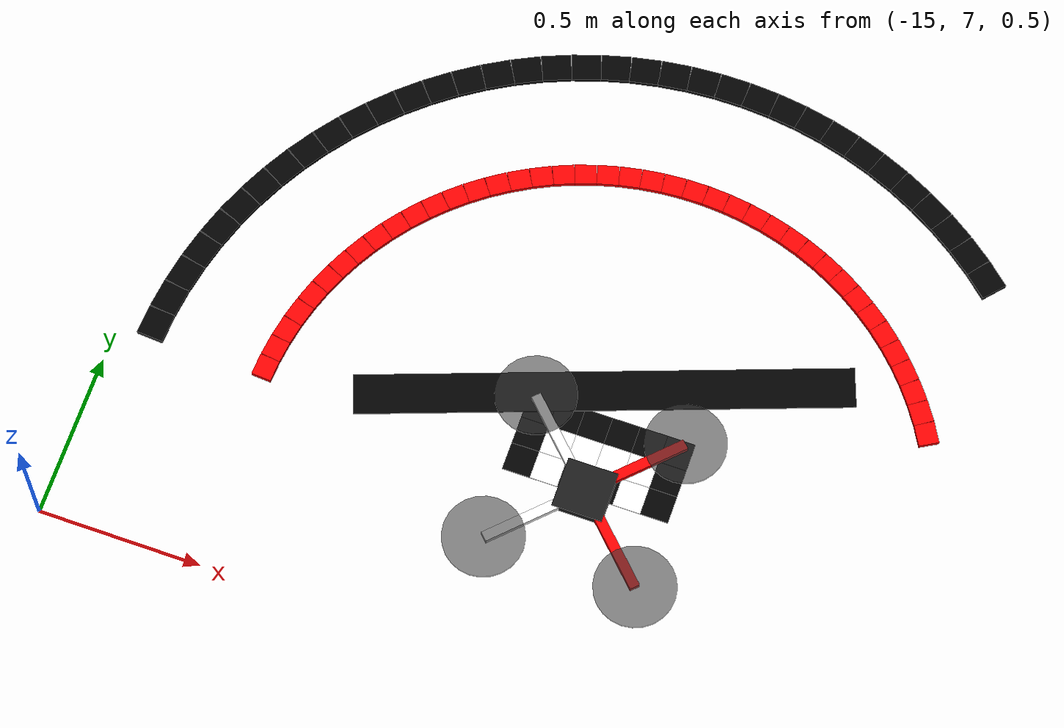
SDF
<sdf version="1.9">
 <world name="indoor_mission">
  <model name="start_vertiport_black_outer_ring_13">
   <static>true</static>
   <pose>-12.609883149614907 8.51498374009662 0.701 0 0 2.421644337142132</pose>
   <link name="link">
    <visual name="visual">
     <geometry><box><size>0.08835729338221293 0.08 0.015</size></box></geometry>
     <material><ambient>0 0 0 1</ambient><diffuse>0 0 0 1</diffuse></material>
    </visual>
   </link>
  </model>
  <model name="start_vertiport_black_outer_ring_14">
   <static>true</static>
   <pose>-12.678172070838228 8.571027009393168 0.701 0 0 2.4870941840919194</pose>
   <link name="link">
    <visual name="visual">
     <geometry><box><size>0.08835729338221293 0.08 0.015</size></box></geometry>
     <material><ambient>0 0 0 1</ambient><diffuse>0 0 0 1</diffuse></material>
    </visual>
   </link>
  </model>
  <model name="start_vertiport_black_outer_ring_15">
   <static>true</static>
   <pose>-12.749980185423537 8.622483976608436 0.701 0 0 2.5525440310417067</pose>
   <link name="link">
    <visual name="visual">
     <geometry><box><size>0.08835729338221293 0.08 0.015</size></box></geometry>
     <material><ambient>0 0 0 1</ambient><diffuse>0 0 0 1</diffuse></material>
    </visual>
   </link>
  </model>
  <model name="start_vertiport_black_outer_ring_16">
   <static>true</static>
   <pose>-12.825 8.669134295108993 0.701 0 0 2.617993877991494</pose>
   <link name="link">
    <visual name="visual">
     <geometry><box><size>0.08835729338221293 0.08 0.015</size></box></geometry>
     <material><ambient>0 0 0 1</ambient><diffuse>0 0 0 1</diffuse></material>
    </visual>
   </link>
  </model>
  <model name="start_vertiport_black_outer_ring_17">
   <static>true</static>
   <pose>-12.902910268204348 8.710778201069129 0.701 0 0 2.6834437249412817</pose>
   <link name="link">
    <visual name="visual">
     <geometry><box><size>0.08835729338221293 0.08 0.015</size></box></geometry>
     <material><ambient>0 0 0 1</ambient><diffuse>0 0 0 1</diffuse></material>
    </visual>
   </link>
  </model>
  <model name="start_vertiport_black_outer_ring_18">
   <static>true</static>
   <pose>-12.98337736630713 8.747237368890238 0.701 0 0 2.748893571891069</pose>
   <link name="link">
    <visual name="visual">
     <geometry><box><size>0.08835729338221293 0.08 0.015</size></box></geometry>
     <material><ambient>0 0 0 1</ambient><diffuse>0 0 0 1</diffuse></material>
    </visual>
   </link>
  </model>
  <model name="start_vertiport_black_outer_ring_19">
   <static>true</static>
   <pose>-13.06605672184073 8.778355674818393 0.701 0 0 2.8143434188408563</pose>
   <link name="link">
    <visual name="visual">
     <geometry><box><size>0.08835729338221293 0.08 0.015</size></box></geometry>
     <material><ambient>0 0 0 1</ambient><diffuse>0 0 0 1</diffuse></material>
    </visual>
   </link>
  </model>
  <model name="start_vertiport_black_outer_ring_20">
   <static>true</static>
   <pose>-13.150594289111597 8.803999865490242 0.701 0 0 2.8797932657906435</pose>
   <link name="link">
    <visual name="visual">
     <geometry><box><size>0.08835729338221293 0.08 0.015</size></box></geometry>
     <material><ambient>0 0 0 1</ambient><diffuse>0 0 0 1</diffuse></material>
    </visual>
   </link>
  </model>
  <model name="start_vertiport_black_outer_ring_21">
   <static>true</static>
   <pose>-13.236628065278227 8.82406012854436 0.701 0 0 2.945243112740431</pose>
   <link name="link">
    <visual name="visual">
     <geometry><box><size>0.08835729338221293 0.08 0.015</size></box></geometry>
     <material><ambient>0 0 0 1</ambient><diffuse>0 0 0 1</diffuse></material>
    </visual>
   </link>
  </model>
  <model name="start_vertiport_black_outer_ring_22">
   <static>true</static>
   <pose>-13.32378964050293 8.838450562854645 0.701 0 0 3.0106929596902186</pose>
   <link name="link">
    <visual name="visual">
     <geometry><box><size>0.08835729338221293 0.08 0.015</size></box></geometry>
     <material><ambient>0 0 0 1</ambient><diffuse>0 0 0 1</diffuse></material>
    </visual>
   </link>
  </model>
  <model name="start_vertiport_black_outer_ring_23">
   <static>true</static>
   <pose>-13.411705775539307 8.847109546372115 0.701 0 0 3.0761428066400054</pose>
   <link name="link">
    <visual name="visual">
     <geometry><box><size>0.08835729338221293 0.08 0.015</size></box></geometry>
     <material><ambient>0 0 0 1</ambient><diffuse>0 0 0 1</diffuse></material>
    </visual>
   </link>
  </model>
  <model name="start_vertiport_black_outer_ring_24">
   <static>true</static>
   <pose>-13.5 8.85 0.701 0 0 3.141592653589793</pose>
   <link name="link">
    <visual name="visual">
     <geometry><box><size>0.08835729338221293 0.08 0.015</size></box></geometry>
     <material><ambient>0 0 0 1</ambient><diffuse>0 0 0 1</diffuse></material>
    </visual>
   </link>
  </model>
  <model name="start_vertiport_black_outer_ring_25">
   <static>true</static>
   <pose>-13.588294224460693 8.847109546372115 0.701 0 0 3.2070425005395804</pose>
   <link name="link">
    <visual name="visual">
     <geometry><box><size>0.08835729338221293 0.08 0.015</size></box></geometry>
     <material><ambient>0 0 0 1</ambient><diffuse>0 0 0 1</diffuse></material>
    </visual>
   </link>
  </model>
  <model name="start_vertiport_black_outer_ring_26">
   <static>true</static>
   <pose>-13.67621035949707 8.838450562854645 0.701 0 0 3.2724923474893677</pose>
   <link name="link">
    <visual name="visual">
     <geometry><box><size>0.08835729338221293 0.08 0.015</size></box></geometry>
     <material><ambient>0 0 0 1</ambient><diffuse>0 0 0 1</diffuse></material>
    </visual>
   </link>
  </model>
  <model name="start_vertiport_black_outer_ring_27">
   <static>true</static>
   <pose>-13.763371934721773 8.824060128544362 0.701 0 0 3.337942194439155</pose>
   <link name="link">
    <visual name="visual">
     <geometry><box><size>0.08835729338221293 0.08 0.015</size></box></geometry>
     <material><ambient>0 0 0 1</ambient><diffuse>0 0 0 1</diffuse></material>
    </visual>
   </link>
  </model>
  <model name="start_vertiport_black_outer_ring_28">
   <static>true</static>
   <pose>-13.849405710888403 8.803999865490242 0.701 0 0 3.4033920413889422</pose>
   <link name="link">
    <visual name="visual">
     <geometry><box><size>0.08835729338221293 0.08 0.015</size></box></geometry>
     <material><ambient>0 0 0 1</ambient><diffuse>0 0 0 1</diffuse></material>
    </visual>
   </link>
  </model>
  <model name="start_vertiport_black_outer_ring_29">
   <static>true</static>
   <pose>-13.933943278159267 8.778355674818393 0.701 0 0 3.46884188833873</pose>
   <link name="link">
    <visual name="visual">
     <geometry><box><size>0.08835729338221293 0.08 0.015</size></box></geometry>
     <material><ambient>0 0 0 1</ambient><diffuse>0 0 0 1</diffuse></material>
    </visual>
   </link>
  </model>
  <model name="start_vertiport_black_outer_ring_30">
   <static>true</static>
   <pose>-14.01662263369287 8.747237368890238 0.701 0 0 3.534291735288517</pose>
   <link name="link">
    <visual name="visual">
     <geometry><box><size>0.08835729338221293 0.08 0.015</size></box></geometry>
     <material><ambient>0 0 0 1</ambient><diffuse>0 0 0 1</diffuse></material>
    </visual>
   </link>
  </model>
  <model name="start_vertiport_black_outer_ring_31">
   <static>true</static>
   <pose>-14.097089731795652 8.710778201069129 0.701 0 0 3.5997415822383045</pose>
   <link name="link">
    <visual name="visual">
     <geometry><box><size>0.08835729338221293 0.08 0.015</size></box></geometry>
     <material><ambient>0 0 0 1</ambient><diffuse>0 0 0 1</diffuse></material>
    </visual>
   </link>
  </model>
  <model name="start_vertiport_black_outer_ring_32">
   <static>true</static>
   <pose>-14.174999999999999 8.669134295108993 0.701 0 0 3.665191429188092</pose>
   <link name="link">
    <visual name="visual">
     <geometry><box><size>0.08835729338221293 0.08 0.015</size></box></geometry>
     <material><ambient>0 0 0 1</ambient><diffuse>0 0 0 1</diffuse></material>
    </visual>
   </link>
  </model>
  <model name="start_vertiport_black_outer_ring_33">
   <static>true</static>
   <pose>-14.250019814576463 8.622483976608436 0.701 0 0 3.730641276137879</pose>
   <link name="link">
    <visual name="visual">
     <geometry><box><size>0.08835729338221293 0.08 0.015</size></box></geometry>
     <material><ambient>0 0 0 1</ambient><diffuse>0 0 0 1</diffuse></material>
    </visual>
   </link>
  </model>
  <model name="start_vertiport_black_outer_ring_34">
   <static>true</static>
   <pose>-14.321827929161772 8.571027009393168 0.701 0 0 3.7960911230876664</pose>
   <link name="link">
    <visual name="visual">
     <geometry><box><size>0.08835729338221293 0.08 0.015</size></box></geometry>
     <material><ambient>0 0 0 1</ambient><diffuse>0 0 0 1</diffuse></material>
    </visual>
   </link>
  </model>
  <model name="start_vertiport_black_outer_ring_35">
   <static>true</static>
   <pose>-14.390116850385093 8.51498374009662 0.701 0 0 3.8615409700374537</pose>
   <link name="link">
    <visual name="visual">
     <geometry><box><size>0.08835729338221293 0.08 0.015</size></box></geometry>
     <material><ambient>0 0 0 1</ambient><diffuse>0 0 0 1</diffuse></material>
    </visual>
   </link>
  </model>
  <model name="start_vertiport_black_outer_ring_36">
   <static>true</static>
   <pose>-14.454594154601839 8.454594154601839 0.701 0 0 3.9269908169872414</pose>
   <link name="link">
    <visual name="visual">
     <geometry><box><size>0.08835729338221293 0.08 0.015</size></box></geometry>
     <material><ambient>0 0 0 1</ambient><diffuse>0 0 0 1</diffuse></material>
    </visual>
   </link>
  </model>
  <model name="start_vertiport_black_outer_ring_37">
   <static>true</static>
   <pose>-14.51498374009662 8.390116850385093 0.701 0 0 3.9924406639370287</pose>
   <link name="link">
    <visual name="visual">
     <geometry><box><size>0.08835729338221293 0.08 0.015</size></box></geometry>
     <material><ambient>0 0 0 1</ambient><diffuse>0 0 0 1</diffuse></material>
    </visual>
   </link>
  </model>
  <model name="start_vertiport_black_outer_ring_38">
   <static>true</static>
   <pose>-14.571027009393168 8.321827929161774 0.701 0 0 4.057890510886816</pose>
   <link name="link">
    <visual name="visual">
     <geometry><box><size>0.08835729338221293 0.08 0.015</size></box></geometry>
     <material><ambient>0 0 0 1</ambient><diffuse>0 0 0 1</diffuse></material>
    </visual>
   </link>
  </model>
  <model name="start_vertiport_black_outer_ring_39">
   <static>true</static>
   <pose>-14.622483976608436 8.250019814576463 0.701 0 0 4.123340357836604</pose>
   <link name="link">
    <visual name="visual">
     <geometry><box><size>0.08835729338221293 0.08 0.015</size></box></geometry>
     <material><ambient>0 0 0 1</ambient><diffuse>0 0 0 1</diffuse></material>
    </visual>
   </link>
  </model>
  <model name="start_vertiport_black_outer_ring_40">
   <static>true</static>
   <pose>-14.669134295108993 8.175 0.701 0 0 4.1887902047863905</pose>
   <link name="link">
    <visual name="visual">
     <geometry><box><size>0.08835729338221293 0.08 0.015</size></box></geometry>
     <material><ambient>0 0 0 1</ambient><diffuse>0 0 0 1</diffuse></material>
    </visual>
   </link>
  </model>
  <model name="start_vertiport_black_outer_ring_41">
   <static>true</static>
   <pose>-14.710778201069129 8.097089731795652 0.701 0 0 4.254240051736177</pose>
   <link name="link">
    <visual name="visual">
     <geometry><box><size>0.08835729338221293 0.08 0.015</size></box></geometry>
     <material><ambient>0 0 0 1</ambient><diffuse>0 0 0 1</diffuse></material>
    </visual>
   </link>
  </model>
  <model name="start_vertiport_black_outer_ring_42">
   <static>true</static>
   <pose>-14.747237368890238 8.016622633692872 0.701 0 0 4.319689898685965</pose>
   <link name="link">
    <visual name="visual">
     <geometry><box><size>0.08835729338221293 0.08 0.015</size></box></geometry>
     <material><ambient>0 0 0 1</ambient><diffuse>0 0 0 1</diffuse></material>
    </visual>
   </link>
  </model>
  <model name="start_vertiport_black_outer_ring_43">
   <static>true</static>
   <pose>-14.778355674818393 7.933943278159268 0.701 0 0 4.385139745635753</pose>
   <link name="link">
    <visual name="visual">
     <geometry><box><size>0.08835729338221293 0.08 0.015</size></box></geometry>
     <material><ambient>0 0 0 1</ambient><diffuse>0 0 0 1</diffuse></material>
    </visual>
   </link>
  </model>
  <model name="start_vertiport_black_outer_ring_44">
   <static>true</static>
   <pose>-14.803999865490242 7.849405710888403 0.701 0 0 4.4505895925855405</pose>
   <link name="link">
    <visual name="visual">
     <geometry><box><size>0.08835729338221293 0.08 0.015</size></box></geometry>
     <material><ambient>0 0 0 1</ambient><diffuse>0 0 0 1</diffuse></material>
    </visual>
   </link>
  </model>
  <model name="start_vertiport_black_outer_ring_45">
   <static>true</static>
   <pose>-14.82406012854436 7.763371934721774 0.701 0 0 4.516039439535327</pose>
   <link name="link">
    <visual name="visual">
     <geometry><box><size>0.08835729338221293 0.08 0.015</size></box></geometry>
     <material><ambient>0 0 0 1</ambient><diffuse>0 0 0 1</diffuse></material>
    </visual>
   </link>
  </model>
  <model name="start_vertiport_black_outer_ring_46">
   <static>true</static>
   <pose>-14.838450562854645 7.6762103594970705 0.701 0 0 4.581489286485114</pose>
   <link name="link">
    <visual name="visual">
     <geometry><box><size>0.08835729338221293 0.08 0.015</size></box></geometry>
     <material><ambient>0 0 0 1</ambient><diffuse>0 0 0 1</diffuse></material>
    </visual>
   </link>
  </model>
  <model name="start_vertiport_black_outer_ring_47">
   <static>true</static>
   <pose>-14.847109546372115 7.588294224460694 0.701 0 0 4.646939133434902</pose>
   <link name="link">
    <visual name="visual">
     <geometry><box><size>0.08835729338221293 0.08 0.015</size></box></geometry>
     <material><ambient>0 0 0 1</ambient><diffuse>0 0 0 1</diffuse></material>
    </visual>
   </link>
  </model>
  <model name="start_vertiport_red_safety_ring_8">
   <static>true</static>
   <pose>-12.63397459621556 8.0 0.703 0 0 2.0943951023931953</pose>
   <link name="link">
    <visual name="visual">
     <geometry><box><size>0.06544984694978735 0.06 0.015</size></box></geometry>
     <material><ambient>1 0 0 1</ambient><diffuse>1 0 0 1</diffuse></material>
    </visual>
   </link>
  </model>
  <model name="start_vertiport_red_safety_ring_9">
   <static>true</static>
   <pose>-12.668530387697455 8.055570233019601 0.703 0 0 2.1598449493429825</pose>
   <link name="link">
    <visual name="visual">
     <geometry><box><size>0.06544984694978735 0.06 0.015</size></box></geometry>
     <material><ambient>1 0 0 1</ambient><diffuse>1 0 0 1</diffuse></material>
    </visual>
   </link>
  </model>
  <model name="start_vertiport_red_safety_ring_10">
   <static>true</static>
   <pose>-12.706646659708765 8.108761429008721 0.703 0 0 2.2252947962927703</pose>
   <link name="link">
    <visual name="visual">
     <geometry><box><size>0.06544984694978735 0.06 0.015</size></box></geometry>
     <material><ambient>1 0 0 1</ambient><diffuse>1 0 0 1</diffuse></material>
    </visual>
   </link>
  </model>
  <model name="start_vertiport_red_safety_ring_11">
   <static>true</static>
   <pose>-12.748160192521024 8.15934581510007 0.703 0 0 2.2907446432425576</pose>
   <link name="link">
    <visual name="visual">
     <geometry><box><size>0.06544984694978735 0.06 0.015</size></box></geometry>
     <material><ambient>1 0 0 1</ambient><diffuse>1 0 0 1</diffuse></material>
    </visual>
   </link>
  </model>
  <model name="start_vertiport_red_safety_ring_12">
   <static>true</static>
   <pose>-12.792893218813452 8.207106781186548 0.703 0 0 2.356194490192345</pose>
   <link name="link">
    <visual name="visual">
     <geometry><box><size>0.06544984694978735 0.06 0.015</size></box></geometry>
     <material><ambient>1 0 0 1</ambient><diffuse>1 0 0 1</diffuse></material>
    </visual>
   </link>
  </model>
  <model name="start_vertiport_red_safety_ring_13">
   <static>true</static>
   <pose>-12.84065418489993 8.251839807478976 0.703 0 0 2.421644337142132</pose>
   <link name="link">
    <visual name="visual">
     <geometry><box><size>0.06544984694978735 0.06 0.015</size></box></geometry>
     <material><ambient>1 0 0 1</ambient><diffuse>1 0 0 1</diffuse></material>
    </visual>
   </link>
  </model>
  <model name="start_vertiport_red_safety_ring_14">
   <static>true</static>
   <pose>-12.891238570991279 8.293353340291235 0.703 0 0 2.4870941840919194</pose>
   <link name="link">
    <visual name="visual">
     <geometry><box><size>0.06544984694978735 0.06 0.015</size></box></geometry>
     <material><ambient>1 0 0 1</ambient><diffuse>1 0 0 1</diffuse></material>
    </visual>
   </link>
  </model>
  <model name="start_vertiport_red_safety_ring_15">
   <static>true</static>
   <pose>-12.944429766980397 8.331469612302545 0.703 0 0 2.5525440310417067</pose>
   <link name="link">
    <visual name="visual">
     <geometry><box><size>0.06544984694978735 0.06 0.015</size></box></geometry>
     <material><ambient>1 0 0 1</ambient><diffuse>1 0 0 1</diffuse></material>
    </visual>
   </link>
  </model>
  <model name="start_vertiport_red_safety_ring_16">
   <static>true</static>
   <pose>-13.0 8.36602540378444 0.703 0 0 2.617993877991494</pose>
   <link name="link">
    <visual name="visual">
     <geometry><box><size>0.06544984694978735 0.06 0.015</size></box></geometry>
     <material><ambient>1 0 0 1</ambient><diffuse>1 0 0 1</diffuse></material>
    </visual>
   </link>
  </model>
  <model name="start_vertiport_red_safety_ring_17">
   <static>true</static>
   <pose>-13.057711309780998 8.396872741532688 0.703 0 0 2.6834437249412817</pose>
   <link name="link">
    <visual name="visual">
     <geometry><box><size>0.06544984694978735 0.06 0.015</size></box></geometry>
     <material><ambient>1 0 0 1</ambient><diffuse>1 0 0 1</diffuse></material>
    </visual>
   </link>
  </model>
  <model name="start_vertiport_red_safety_ring_18">
   <static>true</static>
   <pose>-13.11731656763491 8.423879532511286 0.703 0 0 2.748893571891069</pose>
   <link name="link">
    <visual name="visual">
     <geometry><box><size>0.06544984694978735 0.06 0.015</size></box></geometry>
     <material><ambient>1 0 0 1</ambient><diffuse>1 0 0 1</diffuse></material>
    </visual>
   </link>
  </model>
  <model name="start_vertiport_red_safety_ring_19">
   <static>true</static>
   <pose>-13.178560534696839 8.446930129495106 0.703 0 0 2.8143434188408563</pose>
   <link name="link">
    <visual name="visual">
     <geometry><box><size>0.06544984694978735 0.06 0.015</size></box></geometry>
     <material><ambient>1 0 0 1</ambient><diffuse>1 0 0 1</diffuse></material>
    </visual>
   </link>
  </model>
  <model name="start_vertiport_red_safety_ring_20">
   <static>true</static>
   <pose>-13.241180954897478 8.465925826289068 0.703 0 0 2.8797932657906435</pose>
   <link name="link">
    <visual name="visual">
     <geometry><box><size>0.06544984694978735 0.06 0.015</size></box></geometry>
     <material><ambient>1 0 0 1</ambient><diffuse>1 0 0 1</diffuse></material>
    </visual>
   </link>
  </model>
  <model name="start_vertiport_red_safety_ring_21">
   <static>true</static>
   <pose>-13.304909677983872 8.48078528040323 0.703 0 0 2.945243112740431</pose>
   <link name="link">
    <visual name="visual">
     <geometry><box><size>0.06544984694978735 0.06 0.015</size></box></geometry>
     <material><ambient>1 0 0 1</ambient><diffuse>1 0 0 1</diffuse></material>
    </visual>
   </link>
  </model>
  <model name="start_vertiport_red_safety_ring_22">
   <static>true</static>
   <pose>-13.369473807779949 8.491444861373811 0.703 0 0 3.0106929596902186</pose>
   <link name="link">
    <visual name="visual">
     <geometry><box><size>0.06544984694978735 0.06 0.015</size></box></geometry>
     <material><ambient>1 0 0 1</ambient><diffuse>1 0 0 1</diffuse></material>
    </visual>
   </link>
  </model>
  <model name="start_vertiport_red_safety_ring_23">
   <static>true</static>
   <pose>-13.434596870769857 8.497858923238603 0.703 0 0 3.0761428066400054</pose>
   <link name="link">
    <visual name="visual">
     <geometry><box><size>0.06544984694978735 0.06 0.015</size></box></geometry>
     <material><ambient>1 0 0 1</ambient><diffuse>1 0 0 1</diffuse></material>
    </visual>
   </link>
  </model>
  <model name="start_vertiport_red_safety_ring_24">
   <static>true</static>
   <pose>-13.5 8.5 0.703 0 0 3.141592653589793</pose>
   <link name="link">
    <visual name="visual">
     <geometry><box><size>0.06544984694978735 0.06 0.015</size></box></geometry>
     <material><ambient>1 0 0 1</ambient><diffuse>1 0 0 1</diffuse></material>
    </visual>
   </link>
  </model>
  <model name="start_vertiport_red_safety_ring_25">
   <static>true</static>
   <pose>-13.565403129230143 8.497858923238603 0.703 0 0 3.2070425005395804</pose>
   <link name="link">
    <visual name="visual">
     <geometry><box><size>0.06544984694978735 0.06 0.015</size></box></geometry>
     <material><ambient>1 0 0 1</ambient><diffuse>1 0 0 1</diffuse></material>
    </visual>
   </link>
  </model>
  <model name="start_vertiport_red_safety_ring_26">
   <static>true</static>
   <pose>-13.630526192220051 8.491444861373811 0.703 0 0 3.2724923474893677</pose>
   <link name="link">
    <visual name="visual">
     <geometry><box><size>0.06544984694978735 0.06 0.015</size></box></geometry>
     <material><ambient>1 0 0 1</ambient><diffuse>1 0 0 1</diffuse></material>
    </visual>
   </link>
  </model>
  <model name="start_vertiport_red_safety_ring_27">
   <static>true</static>
   <pose>-13.695090322016128 8.48078528040323 0.703 0 0 3.337942194439155</pose>
   <link name="link">
    <visual name="visual">
     <geometry><box><size>0.06544984694978735 0.06 0.015</size></box></geometry>
     <material><ambient>1 0 0 1</ambient><diffuse>1 0 0 1</diffuse></material>
    </visual>
   </link>
  </model>
  <model name="start_vertiport_red_safety_ring_28">
   <static>true</static>
   <pose>-13.75881904510252 8.465925826289068 0.703 0 0 3.4033920413889422</pose>
   <link name="link">
    <visual name="visual">
     <geometry><box><size>0.06544984694978735 0.06 0.015</size></box></geometry>
     <material><ambient>1 0 0 1</ambient><diffuse>1 0 0 1</diffuse></material>
    </visual>
   </link>
  </model>
  <model name="start_vertiport_red_safety_ring_29">
   <static>true</static>
   <pose>-13.821439465303161 8.446930129495106 0.703 0 0 3.46884188833873</pose>
   <link name="link">
    <visual name="visual">
     <geometry><box><size>0.06544984694978735 0.06 0.015</size></box></geometry>
     <material><ambient>1 0 0 1</ambient><diffuse>1 0 0 1</diffuse></material>
    </visual>
   </link>
  </model>
  <model name="start_vertiport_red_safety_ring_30">
   <static>true</static>
   <pose>-13.88268343236509 8.423879532511286 0.703 0 0 3.534291735288517</pose>
   <link name="link">
    <visual name="visual">
     <geometry><box><size>0.06544984694978735 0.06 0.015</size></box></geometry>
     <material><ambient>1 0 0 1</ambient><diffuse>1 0 0 1</diffuse></material>
    </visual>
   </link>
  </model>
  <model name="start_vertiport_red_safety_ring_31">
   <static>true</static>
   <pose>-13.942288690219002 8.396872741532688 0.703 0 0 3.5997415822383045</pose>
   <link name="link">
    <visual name="visual">
     <geometry><box><size>0.06544984694978735 0.06 0.015</size></box></geometry>
     <material><ambient>1 0 0 1</ambient><diffuse>1 0 0 1</diffuse></material>
    </visual>
   </link>
  </model>
  <model name="start_vertiport_red_safety_ring_32">
   <static>true</static>
   <pose>-14.0 8.36602540378444 0.703 0 0 3.665191429188092</pose>
   <link name="link">
    <visual name="visual">
     <geometry><box><size>0.06544984694978735 0.06 0.015</size></box></geometry>
     <material><ambient>1 0 0 1</ambient><diffuse>1 0 0 1</diffuse></material>
    </visual>
   </link>
  </model>
  <model name="start_vertiport_red_safety_ring_33">
   <static>true</static>
   <pose>-14.055570233019601 8.331469612302545 0.703 0 0 3.730641276137879</pose>
   <link name="link">
    <visual name="visual">
     <geometry><box><size>0.06544984694978735 0.06 0.015</size></box></geometry>
     <material><ambient>1 0 0 1</ambient><diffuse>1 0 0 1</diffuse></material>
    </visual>
   </link>
  </model>
  <model name="start_vertiport_red_safety_ring_34">
   <static>true</static>
   <pose>-14.10876142900872 8.293353340291235 0.703 0 0 3.7960911230876664</pose>
   <link name="link">
    <visual name="visual">
     <geometry><box><size>0.06544984694978735 0.06 0.015</size></box></geometry>
     <material><ambient>1 0 0 1</ambient><diffuse>1 0 0 1</diffuse></material>
    </visual>
   </link>
  </model>
  <model name="start_vertiport_red_safety_ring_35">
   <static>true</static>
   <pose>-14.15934581510007 8.251839807478978 0.703 0 0 3.8615409700374537</pose>
   <link name="link">
    <visual name="visual">
     <geometry><box><size>0.06544984694978735 0.06 0.015</size></box></geometry>
     <material><ambient>1 0 0 1</ambient><diffuse>1 0 0 1</diffuse></material>
    </visual>
   </link>
  </model>
  <model name="start_vertiport_red_safety_ring_36">
   <static>true</static>
   <pose>-14.207106781186548 8.207106781186548 0.703 0 0 3.9269908169872414</pose>
   <link name="link">
    <visual name="visual">
     <geometry><box><size>0.06544984694978735 0.06 0.015</size></box></geometry>
     <material><ambient>1 0 0 1</ambient><diffuse>1 0 0 1</diffuse></material>
    </visual>
   </link>
  </model>
  <model name="start_vertiport_red_safety_ring_37">
   <static>true</static>
   <pose>-14.251839807478976 8.15934581510007 0.703 0 0 3.9924406639370287</pose>
   <link name="link">
    <visual name="visual">
     <geometry><box><size>0.06544984694978735 0.06 0.015</size></box></geometry>
     <material><ambient>1 0 0 1</ambient><diffuse>1 0 0 1</diffuse></material>
    </visual>
   </link>
  </model>
  <model name="start_vertiport_red_safety_ring_38">
   <static>true</static>
   <pose>-14.293353340291235 8.108761429008721 0.703 0 0 4.057890510886816</pose>
   <link name="link">
    <visual name="visual">
     <geometry><box><size>0.06544984694978735 0.06 0.015</size></box></geometry>
     <material><ambient>1 0 0 1</ambient><diffuse>1 0 0 1</diffuse></material>
    </visual>
   </link>
  </model>
  <model name="start_vertiport_red_safety_ring_39">
   <static>true</static>
   <pose>-14.331469612302545 8.055570233019603 0.703 0 0 4.123340357836604</pose>
   <link name="link">
    <visual name="visual">
     <geometry><box><size>0.06544984694978735 0.06 0.015</size></box></geometry>
     <material><ambient>1 0 0 1</ambient><diffuse>1 0 0 1</diffuse></material>
    </visual>
   </link>
  </model>
  <model name="start_vertiport_red_safety_ring_40">
   <static>true</static>
   <pose>-14.36602540378444 8.0 0.703 0 0 4.1887902047863905</pose>
   <link name="link">
    <visual name="visual">
     <geometry><box><size>0.06544984694978735 0.06 0.015</size></box></geometry>
     <material><ambient>1 0 0 1</ambient><diffuse>1 0 0 1</diffuse></material>
    </visual>
   </link>
  </model>
  <model name="start_vertiport_red_safety_ring_41">
   <static>true</static>
   <pose>-14.396872741532688 7.9422886902190015 0.703 0 0 4.254240051736177</pose>
   <link name="link">
    <visual name="visual">
     <geometry><box><size>0.06544984694978735 0.06 0.015</size></box></geometry>
     <material><ambient>1 0 0 1</ambient><diffuse>1 0 0 1</diffuse></material>
    </visual>
   </link>
  </model>
  <model name="start_vertiport_red_safety_ring_42">
   <static>true</static>
   <pose>-14.423879532511286 7.88268343236509 0.703 0 0 4.319689898685965</pose>
   <link name="link">
    <visual name="visual">
     <geometry><box><size>0.06544984694978735 0.06 0.015</size></box></geometry>
     <material><ambient>1 0 0 1</ambient><diffuse>1 0 0 1</diffuse></material>
    </visual>
   </link>
  </model>
  <model name="start_vertiport_red_safety_ring_43">
   <static>true</static>
   <pose>-14.446930129495106 7.821439465303162 0.703 0 0 4.385139745635753</pose>
   <link name="link">
    <visual name="visual">
     <geometry><box><size>0.06544984694978735 0.06 0.015</size></box></geometry>
     <material><ambient>1 0 0 1</ambient><diffuse>1 0 0 1</diffuse></material>
    </visual>
   </link>
  </model>
  <model name="start_vertiport_red_safety_ring_44">
   <static>true</static>
   <pose>-14.465925826289068 7.758819045102521 0.703 0 0 4.4505895925855405</pose>
   <link name="link">
    <visual name="visual">
     <geometry><box><size>0.06544984694978735 0.06 0.015</size></box></geometry>
     <material><ambient>1 0 0 1</ambient><diffuse>1 0 0 1</diffuse></material>
    </visual>
   </link>
  </model>
  <model name="start_vertiport_red_safety_ring_45">
   <static>true</static>
   <pose>-14.48078528040323 7.695090322016129 0.703 0 0 4.516039439535327</pose>
   <link name="link">
    <visual name="visual">
     <geometry><box><size>0.06544984694978735 0.06 0.015</size></box></geometry>
     <material><ambient>1 0 0 1</ambient><diffuse>1 0 0 1</diffuse></material>
    </visual>
   </link>
  </model>
  <model name="start_vertiport_red_safety_ring_46">
   <static>true</static>
   <pose>-14.491444861373811 7.630526192220052 0.703 0 0 4.581489286485114</pose>
   <link name="link">
    <visual name="visual">
     <geometry><box><size>0.06544984694978735 0.06 0.015</size></box></geometry>
     <material><ambient>1 0 0 1</ambient><diffuse>1 0 0 1</diffuse></material>
    </visual>
   </link>
  </model>
  <model name="start_vertiport_red_safety_ring_47">
   <static>true</static>
   <pose>-14.497858923238603 7.565403129230144 0.703 0 0 4.646939133434902</pose>
   <link name="link">
    <visual name="visual">
     <geometry><box><size>0.06544984694978735 0.06 0.015</size></box></geometry>
     <material><ambient>1 0 0 1</ambient><diffuse>1 0 0 1</diffuse></material>
    </visual>
   </link>
  </model>
  <model name="start_vertiport_v_right">
   <static>true</static>
   <pose>-13.55 7.82 0.706 0 0 1.9208</pose>
   <link name="link">
    <visual name="visual">
     <geometry><box><size>0.12 1.45 0.005</size></box></geometry>
     <material><ambient>0 0 0 1</ambient><diffuse>0 0 0 1</diffuse></material>
    </visual>
   </link>
  </model>
  <model name="start_vertiport_marker_cell_0_0">
   <static>true</static>
   <pose>-13.708333333333334 7.708333333333333 0.704 0 0 0</pose>
   <link name="link">
    <visual name="visual">
     <geometry><box><size>0.08333333333333333 0.08333333333333333 0.003</size></box></geometry>
     <material><ambient>0 0 0 1</ambient><diffuse>0 0 0 1</diffuse></material>
    </visual>
   </link>
  </model>
  <model name="start_vertiport_marker_cell_0_1">
   <static>true</static>
   <pose>-13.625 7.708333333333333 0.704 0 0 0</pose>
   <link name="link">
    <visual name="visual">
     <geometry><box><size>0.08333333333333333 0.08333333333333333 0.003</size></box></geometry>
     <material><ambient>0 0 0 1</ambient><diffuse>0 0 0 1</diffuse></material>
    </visual>
   </link>
  </model>
  <model name="start_vertiport_marker_cell_0_2">
   <static>true</static>
   <pose>-13.541666666666668 7.708333333333333 0.704 0 0 0</pose>
   <link name="link">
    <visual name="visual">
     <geometry><box><size>0.08333333333333333 0.08333333333333333 0.003</size></box></geometry>
     <material><ambient>0 0 0 1</ambient><diffuse>0 0 0 1</diffuse></material>
    </visual>
   </link>
  </model>
  <model name="start_vertiport_marker_cell_0_3">
   <static>true</static>
   <pose>-13.458333333333334 7.708333333333333 0.704 0 0 0</pose>
   <link name="link">
    <visual name="visual">
     <geometry><box><size>0.08333333333333333 0.08333333333333333 0.003</size></box></geometry>
     <material><ambient>0 0 0 1</ambient><diffuse>0 0 0 1</diffuse></material>
    </visual>
   </link>
  </model>
  <model name="start_vertiport_marker_cell_0_4">
   <static>true</static>
   <pose>-13.375 7.708333333333333 0.704 0 0 0</pose>
   <link name="link">
    <visual name="visual">
     <geometry><box><size>0.08333333333333333 0.08333333333333333 0.003</size></box></geometry>
     <material><ambient>0 0 0 1</ambient><diffuse>0 0 0 1</diffuse></material>
    </visual>
   </link>
  </model>
  <model name="start_vertiport_marker_cell_0_5">
   <static>true</static>
   <pose>-13.291666666666668 7.708333333333333 0.704 0 0 0</pose>
   <link name="link">
    <visual name="visual">
     <geometry><box><size>0.08333333333333333 0.08333333333333333 0.003</size></box></geometry>
     <material><ambient>0 0 0 1</ambient><diffuse>0 0 0 1</diffuse></material>
    </visual>
   </link>
  </model>
  <model name="start_vertiport_marker_cell_1_0">
   <static>true</static>
   <pose>-13.708333333333334 7.625 0.704 0 0 0</pose>
   <link name="link">
    <visual name="visual">
     <geometry><box><size>0.08333333333333333 0.08333333333333333 0.003</size></box></geometry>
     <material><ambient>0 0 0 1</ambient><diffuse>0 0 0 1</diffuse></material>
    </visual>
   </link>
  </model>
  <model name="start_vertiport_marker_cell_1_1">
   <static>true</static>
   <pose>-13.625 7.625 0.704 0 0 0</pose>
   <link name="link">
    <visual name="visual">
     <geometry><box><size>0.08333333333333333 0.08333333333333333 0.003</size></box></geometry>
     <material><ambient>1 1 1 1</ambient><diffuse>1 1 1 1</diffuse></material>
    </visual>
   </link>
  </model>
  <model name="start_vertiport_marker_cell_1_2">
   <static>true</static>
   <pose>-13.541666666666668 7.625 0.704 0 0 0</pose>
   <link name="link">
    <visual name="visual">
     <geometry><box><size>0.08333333333333333 0.08333333333333333 0.003</size></box></geometry>
     <material><ambient>1 1 1 1</ambient><diffuse>1 1 1 1</diffuse></material>
    </visual>
   </link>
  </model>
  <model name="start_vertiport_marker_cell_1_3">
   <static>true</static>
   <pose>-13.458333333333334 7.625 0.704 0 0 0</pose>
   <link name="link">
    <visual name="visual">
     <geometry><box><size>0.08333333333333333 0.08333333333333333 0.003</size></box></geometry>
     <material><ambient>1 1 1 1</ambient><diffuse>1 1 1 1</diffuse></material>
    </visual>
   </link>
  </model>
  <model name="start_vertiport_marker_cell_1_4">
   <static>true</static>
   <pose>-13.375 7.625 0.704 0 0 0</pose>
   <link name="link">
    <visual name="visual">
     <geometry><box><size>0.08333333333333333 0.08333333333333333 0.003</size></box></geometry>
     <material><ambient>1 1 1 1</ambient><diffuse>1 1 1 1</diffuse></material>
    </visual>
   </link>
  </model>
  <model name="start_vertiport_marker_cell_1_5">
   <static>true</static>
   <pose>-13.291666666666668 7.625 0.704 0 0 0</pose>
   <link name="link">
    <visual name="visual">
     <geometry><box><size>0.08333333333333333 0.08333333333333333 0.003</size></box></geometry>
     <material><ambient>0 0 0 1</ambient><diffuse>0 0 0 1</diffuse></material>
    </visual>
   </link>
  </model>
  <model name="start_vertiport_marker_cell_2_0">
   <static>true</static>
   <pose>-13.708333333333334 7.541666666666666 0.704 0 0 0</pose>
   <link name="link">
    <visual name="visual">
     <geometry><box><size>0.08333333333333333 0.08333333333333333 0.003</size></box></geometry>
     <material><ambient>0 0 0 1</ambient><diffuse>0 0 0 1</diffuse></material>
    </visual>
   </link>
  </model>
  <model name="start_vertiport_marker_cell_2_1">
   <static>true</static>
   <pose>-13.625 7.541666666666666 0.704 0 0 0</pose>
   <link name="link">
    <visual name="visual">
     <geometry><box><size>0.08333333333333333 0.08333333333333333 0.003</size></box></geometry>
     <material><ambient>1 1 1 1</ambient><diffuse>1 1 1 1</diffuse></material>
    </visual>
   </link>
  </model>
  <model name="start_vertiport_marker_cell_2_2">
   <static>true</static>
   <pose>-13.541666666666668 7.541666666666666 0.704 0 0 0</pose>
   <link name="link">
    <visual name="visual">
     <geometry><box><size>0.08333333333333333 0.08333333333333333 0.003</size></box></geometry>
     <material><ambient>0 0 0 1</ambient><diffuse>0 0 0 1</diffuse></material>
    </visual>
   </link>
  </model>
  <model name="start_vertiport_marker_cell_2_3">
   <static>true</static>
   <pose>-13.458333333333334 7.541666666666666 0.704 0 0 0</pose>
   <link name="link">
    <visual name="visual">
     <geometry><box><size>0.08333333333333333 0.08333333333333333 0.003</size></box></geometry>
     <material><ambient>0 0 0 1</ambient><diffuse>0 0 0 1</diffuse></material>
    </visual>
   </link>
  </model>
  <model name="start_vertiport_marker_cell_2_4">
   <static>true</static>
   <pose>-13.375 7.541666666666666 0.704 0 0 0</pose>
   <link name="link">
    <visual name="visual">
     <geometry><box><size>0.08333333333333333 0.08333333333333333 0.003</size></box></geometry>
     <material><ambient>1 1 1 1</ambient><diffuse>1 1 1 1</diffuse></material>
    </visual>
   </link>
  </model>
  <model name="start_vertiport_marker_cell_2_5">
   <static>true</static>
   <pose>-13.291666666666668 7.541666666666666 0.704 0 0 0</pose>
   <link name="link">
    <visual name="visual">
     <geometry><box><size>0.08333333333333333 0.08333333333333333 0.003</size></box></geometry>
     <material><ambient>0 0 0 1</ambient><diffuse>0 0 0 1</diffuse></material>
    </visual>
   </link>
  </model>
  <model name="sim_drone">
   <static>true</static>
   <pose>-13.5 7.5 0.73 0 0 0</pose>
   <link name="link">
    <visual name="f450_center_hub">
     <pose>0 0 0.015 0 0 0</pose>
     <geometry><box><size>0.15 0.15 0.03</size></box></geometry>
     <material><ambient>0.1 0.1 0.1 1</ambient><diffuse>0.1 0.1 0.1 1</diffuse></material>
    </visual>
    <visual name="arm_front_right">
     <pose>0.113136 -0.113136 0.015 0 0 -0.7854</pose>
     <geometry><box><size>0.32 0.03 0.02</size></box></geometry>
     <material><ambient>1 0 0 1</ambient><diffuse>1 0 0 1</diffuse></material>
    </visual>
    <visual name="arm_front_left">
     <pose>0.113136 0.113136 0.015 0 0 0.7854</pose>
     <geometry><box><size>0.32 0.03 0.02</size></box></geometry>
     <material><ambient>1 0 0 1</ambient><diffuse>1 0 0 1</diffuse></material>
    </visual>
    <visual name="arm_rear_right">
     <pose>-0.113136 -0.113136 0.015 0 0 0.7854</pose>
     <geometry><box><size>0.32 0.03 0.02</size></box></geometry>
     <material><ambient>1 1 1 1</ambient><diffuse>1 1 1 1</diffuse></material>
    </visual>
    <visual name="arm_rear_left">
     <pose>-0.113136 0.113136 0.015 0 0 -0.7854</pose>
     <geometry><box><size>0.32 0.03 0.02</size></box></geometry>
     <material><ambient>1 1 1 1</ambient><diffuse>1 1 1 1</diffuse></material>
    </visual>
    <visual name="rotor_front_right">
     <pose>0.226272 -0.226272 0.025 0 0 0</pose>
     <geometry><cylinder><radius>0.12</radius><length>0.01</length></cylinder></geometry>
     <material><ambient>0.2 0.2 0.2 0.6</ambient><diffuse>0.2 0.2 0.2 0.6</diffuse></material>
    </visual>
    <visual name="rotor_front_left">
     <pose>0.226272 0.226272 0.025 0 0 0</pose>
     <geometry><cylinder><radius>0.12</radius><length>0.01</length></cylinder></geometry>
     <material><ambient>0.2 0.2 0.2 0.6</ambient><diffuse>0.2 0.2 0.2 0.6</diffuse></material>
    </visual>
    <visual name="rotor_rear_right">
     <pose>-0.226272 -0.226272 0.025 0 0 0</pose>
     <geometry><cylinder><radius>0.12</radius><length>0.01</length></cylinder></geometry>
     <material><ambient>0.2 0.2 0.2 0.6</ambient><diffuse>0.2 0.2 0.2 0.6</diffuse></material>
    </visual>
    <visual name="rotor_rear_left">
     <pose>-0.226272 0.226272 0.025 0 0 0</pose>
     <geometry><cylinder><radius>0.12</radius><length>0.01</length></cylinder></geometry>
     <material><ambient>0.2 0.2 0.2 0.6</ambient><diffuse>0.2 0.2 0.2 0.6</diffuse></material>
    </visual>
    <sensor name="sim_drone_camera" type="camera">
     <always_on>true</always_on>
     <update_rate>30</update_rate>
     <topic>/sim_drone_camera/image</topic>
     <pose>0 0 0 0 1.5708 0</pose>
     <camera>
      <horizontal_fov>1.5708</horizontal_fov>
      <image><width>640</width><height>480</height><format>R8G8B8</format></image>
      <clip><near>0.05</near><far>40.0</far></clip>
     </camera>
    </sensor>
   </link>
  </model>
 </world>
</sdf>
